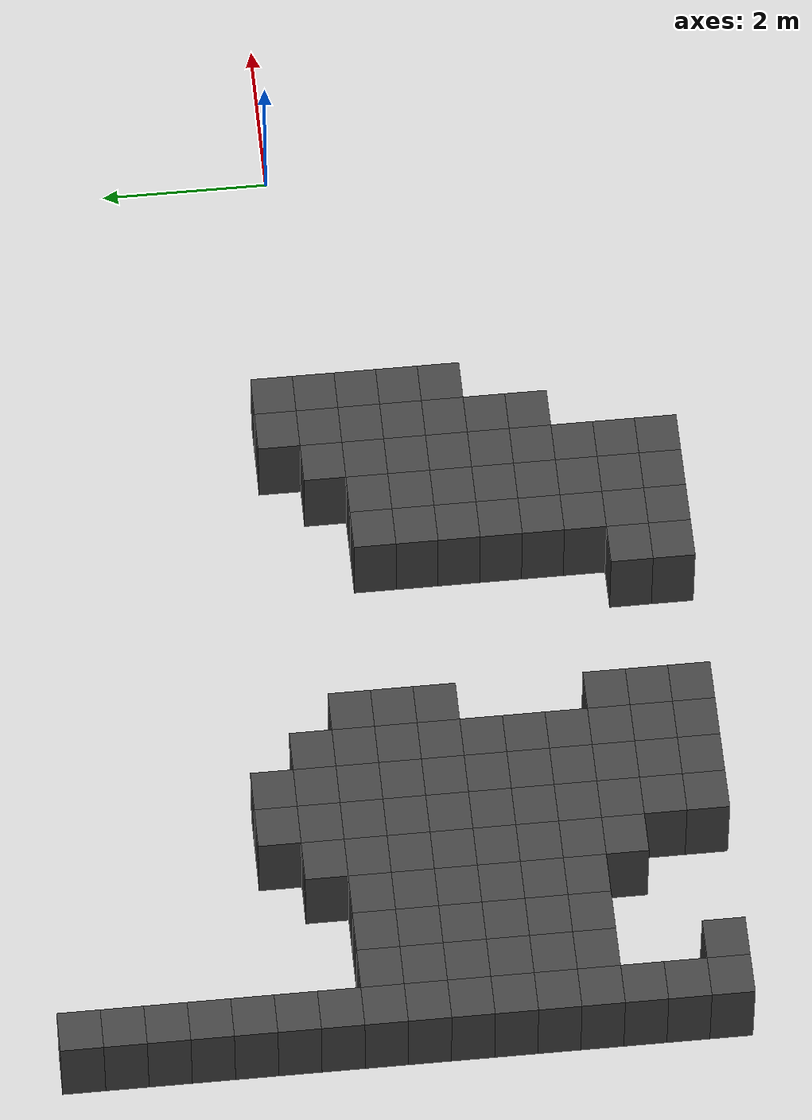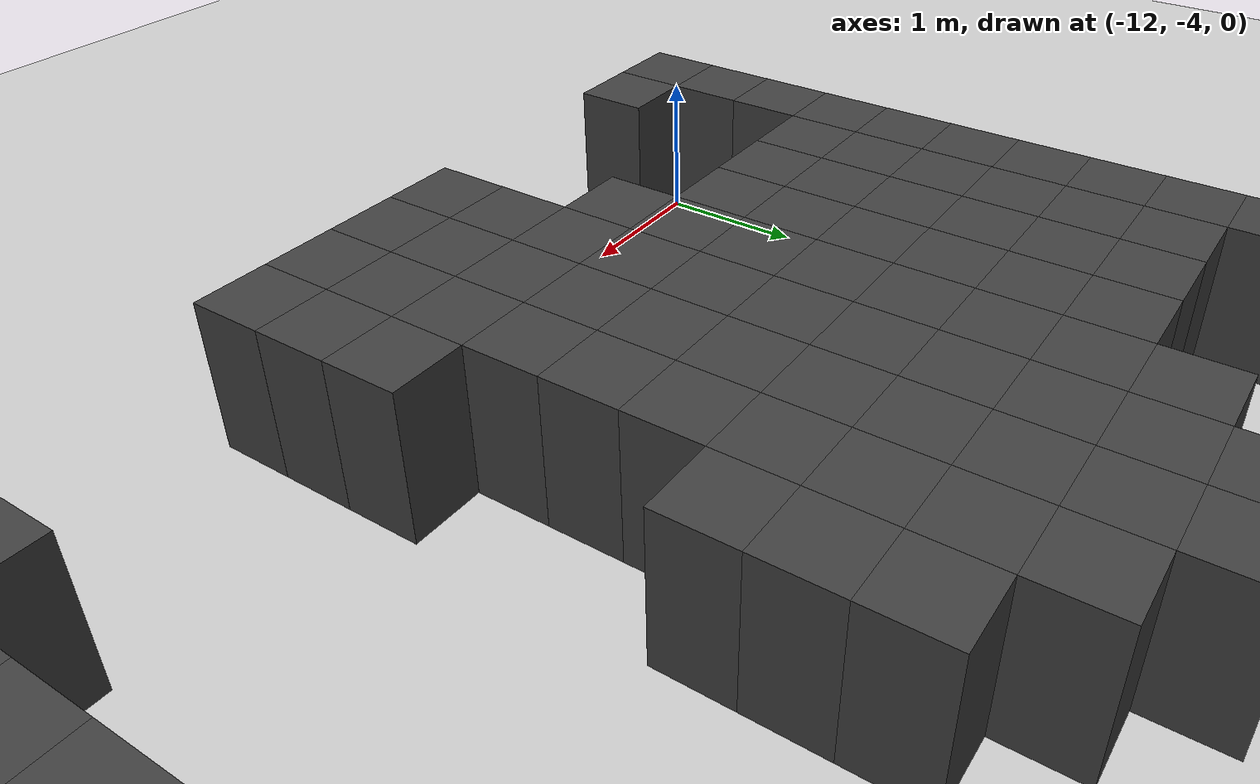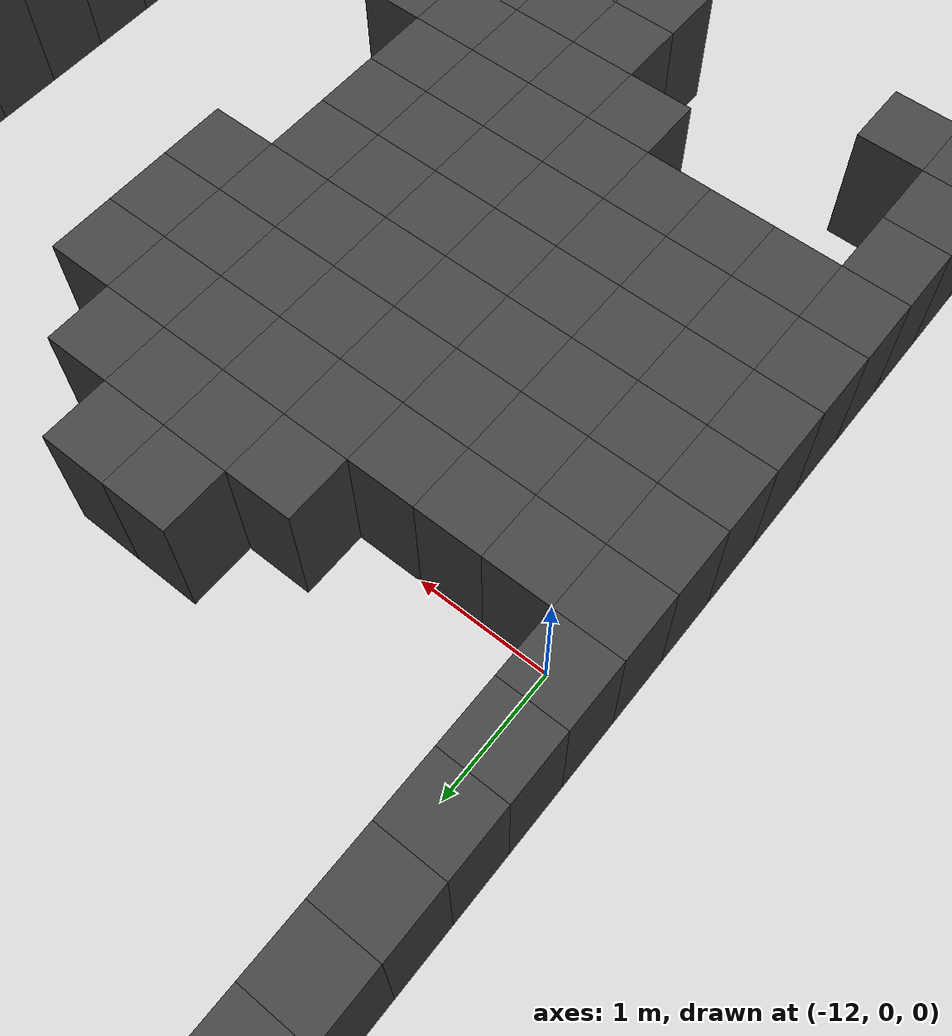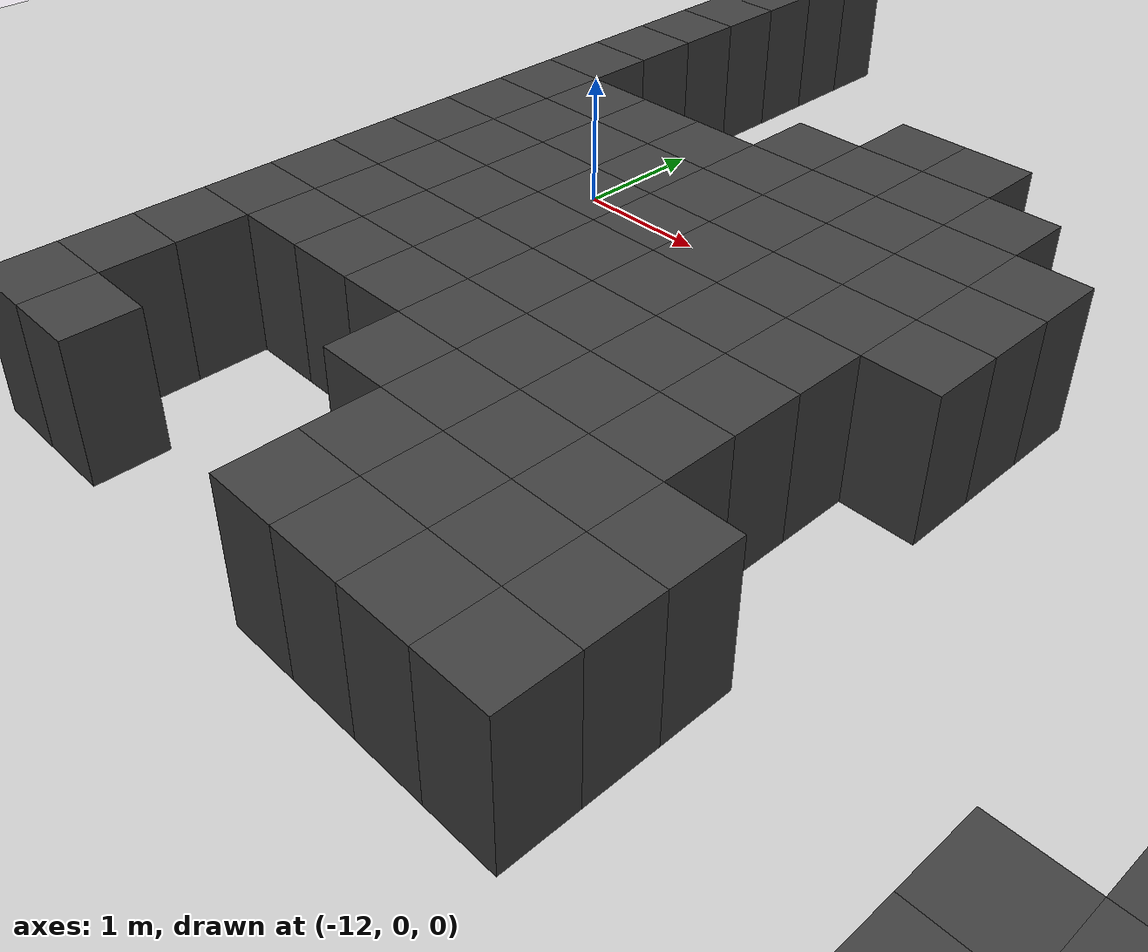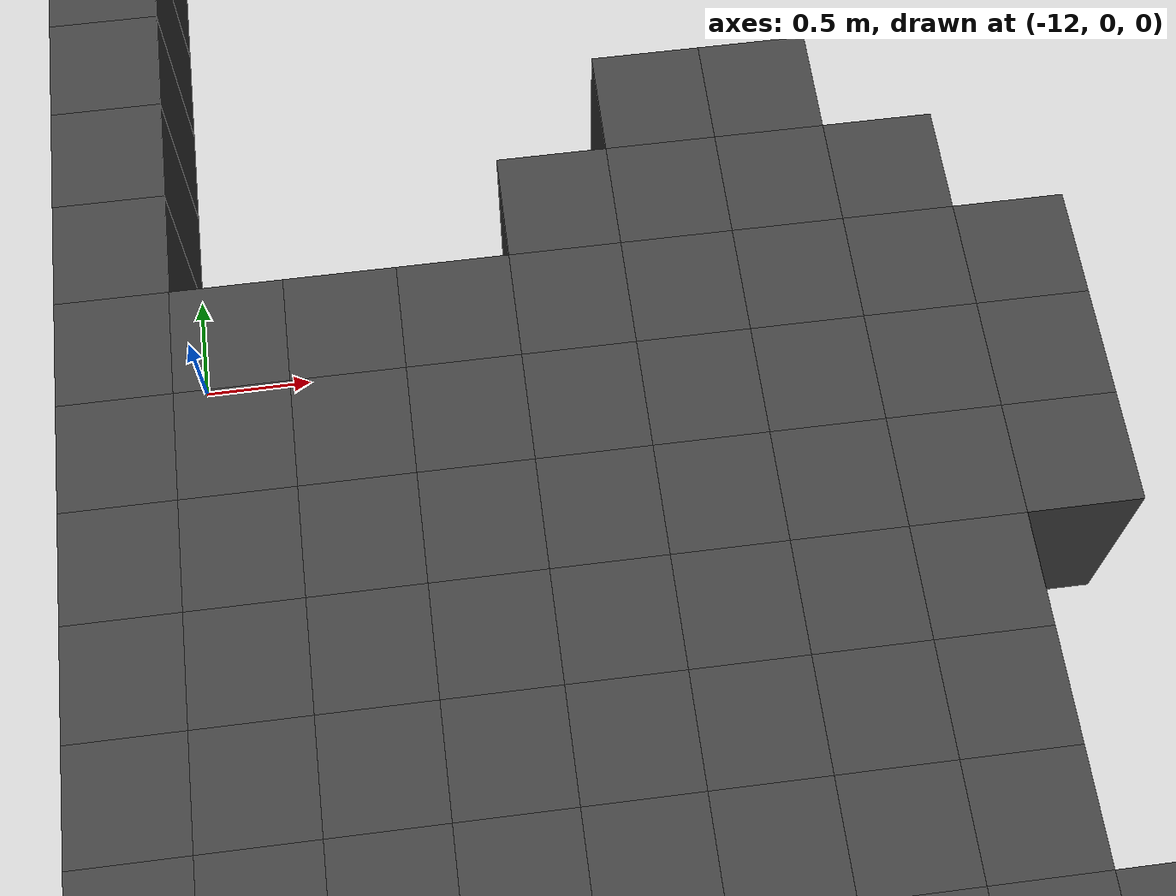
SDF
<sdf version="1.7">
 <world name="map_9381">
  <model name="ground_plane">
   <static>true</static>
   <link name="link">
    <collision name="collision">
     <geometry><plane><normal>0 0 1</normal><size>200 200</size></plane></geometry>
    </collision>
    <visual name="visual">
     <geometry><plane><normal>0 0 1</normal><size>200 200</size></plane></geometry>
     <material><ambient>0.8 0.8 0.8 1</ambient><diffuse>0.8 0.8 0.8 1</diffuse></material>
    </visual>
   </link>
  </model>
  <model name="maze_environment">
   <static>true</static>
   <link name="wall_299">
    <pose>-12.250 3.250 0.500 0 0 0</pose>
    <collision name="col"><geometry><box><size>0.5 0.5 1.0</size></box></geometry></collision>
    <visual name="vis">
     <geometry><box><size>0.5 0.5 1.0</size></box></geometry>
     <material><ambient>0.15 0.15 0.15 1</ambient><diffuse>0.25 0.25 0.25 1</diffuse></material>
    </visual>
   </link>
   <link name="wall_305">
    <pose>-12.250 2.750 0.500 0 0 0</pose>
    <collision name="col"><geometry><box><size>0.5 0.5 1.0</size></box></geometry></collision>
    <visual name="vis">
     <geometry><box><size>0.5 0.5 1.0</size></box></geometry>
     <material><ambient>0.15 0.15 0.15 1</ambient><diffuse>0.25 0.25 0.25 1</diffuse></material>
    </visual>
   </link>
   <link name="wall_311">
    <pose>-12.250 2.250 0.500 0 0 0</pose>
    <collision name="col"><geometry><box><size>0.5 0.5 1.0</size></box></geometry></collision>
    <visual name="vis">
     <geometry><box><size>0.5 0.5 1.0</size></box></geometry>
     <material><ambient>0.15 0.15 0.15 1</ambient><diffuse>0.25 0.25 0.25 1</diffuse></material>
    </visual>
   </link>
   <link name="wall_320">
    <pose>-12.250 1.750 0.500 0 0 0</pose>
    <collision name="col"><geometry><box><size>0.5 0.5 1.0</size></box></geometry></collision>
    <visual name="vis">
     <geometry><box><size>0.5 0.5 1.0</size></box></geometry>
     <material><ambient>0.15 0.15 0.15 1</ambient><diffuse>0.25 0.25 0.25 1</diffuse></material>
    </visual>
   </link>
   <link name="wall_329">
    <pose>-12.250 1.250 0.500 0 0 0</pose>
    <collision name="col"><geometry><box><size>0.5 0.5 1.0</size></box></geometry></collision>
    <visual name="vis">
     <geometry><box><size>0.5 0.5 1.0</size></box></geometry>
     <material><ambient>0.15 0.15 0.15 1</ambient><diffuse>0.25 0.25 0.25 1</diffuse></material>
    </visual>
   </link>
   <link name="wall_338">
    <pose>-12.250 0.750 0.500 0 0 0</pose>
    <collision name="col"><geometry><box><size>0.5 0.5 1.0</size></box></geometry></collision>
    <visual name="vis">
     <geometry><box><size>0.5 0.5 1.0</size></box></geometry>
     <material><ambient>0.15 0.15 0.15 1</ambient><diffuse>0.25 0.25 0.25 1</diffuse></material>
    </visual>
   </link>
   <link name="wall_339">
    <pose>-9.750 0.750 0.500 0 0 0</pose>
    <collision name="col"><geometry><box><size>0.5 0.5 1.0</size></box></geometry></collision>
    <visual name="vis">
     <geometry><box><size>0.5 0.5 1.0</size></box></geometry>
     <material><ambient>0.15 0.15 0.15 1</ambient><diffuse>0.25 0.25 0.25 1</diffuse></material>
    </visual>
   </link>
   <link name="wall_340">
    <pose>-9.250 0.750 0.500 0 0 0</pose>
    <collision name="col"><geometry><box><size>0.5 0.5 1.0</size></box></geometry></collision>
    <visual name="vis">
     <geometry><box><size>0.5 0.5 1.0</size></box></geometry>
     <material><ambient>0.15 0.15 0.15 1</ambient><diffuse>0.25 0.25 0.25 1</diffuse></material>
    </visual>
   </link>
   <link name="wall_347">
    <pose>-12.250 0.250 0.500 0 0 0</pose>
    <collision name="col"><geometry><box><size>0.5 0.5 1.0</size></box></geometry></collision>
    <visual name="vis">
     <geometry><box><size>0.5 0.5 1.0</size></box></geometry>
     <material><ambient>0.15 0.15 0.15 1</ambient><diffuse>0.25 0.25 0.25 1</diffuse></material>
    </visual>
   </link>
   <link name="wall_348">
    <pose>-10.250 0.250 0.500 0 0 0</pose>
    <collision name="col"><geometry><box><size>0.5 0.5 1.0</size></box></geometry></collision>
    <visual name="vis">
     <geometry><box><size>0.5 0.5 1.0</size></box></geometry>
     <material><ambient>0.15 0.15 0.15 1</ambient><diffuse>0.25 0.25 0.25 1</diffuse></material>
    </visual>
   </link>
   <link name="wall_349">
    <pose>-9.750 0.250 0.500 0 0 0</pose>
    <collision name="col"><geometry><box><size>0.5 0.5 1.0</size></box></geometry></collision>
    <visual name="vis">
     <geometry><box><size>0.5 0.5 1.0</size></box></geometry>
     <material><ambient>0.15 0.15 0.15 1</ambient><diffuse>0.25 0.25 0.25 1</diffuse></material>
    </visual>
   </link>
   <link name="wall_350">
    <pose>-9.250 0.250 0.500 0 0 0</pose>
    <collision name="col"><geometry><box><size>0.5 0.5 1.0</size></box></geometry></collision>
    <visual name="vis">
     <geometry><box><size>0.5 0.5 1.0</size></box></geometry>
     <material><ambient>0.15 0.15 0.15 1</ambient><diffuse>0.25 0.25 0.25 1</diffuse></material>
    </visual>
   </link>
   <link name="wall_351">
    <pose>-8.750 0.250 0.500 0 0 0</pose>
    <collision name="col"><geometry><box><size>0.5 0.5 1.0</size></box></geometry></collision>
    <visual name="vis">
     <geometry><box><size>0.5 0.5 1.0</size></box></geometry>
     <material><ambient>0.15 0.15 0.15 1</ambient><diffuse>0.25 0.25 0.25 1</diffuse></material>
    </visual>
   </link>
   <link name="wall_352">
    <pose>-4.250 0.250 0.500 0 0 0</pose>
    <collision name="col"><geometry><box><size>0.5 0.5 1.0</size></box></geometry></collision>
    <visual name="vis">
     <geometry><box><size>0.5 0.5 1.0</size></box></geometry>
     <material><ambient>0.15 0.15 0.15 1</ambient><diffuse>0.25 0.25 0.25 1</diffuse></material>
    </visual>
   </link>
   <link name="wall_353">
    <pose>-3.750 0.250 0.500 0 0 0</pose>
    <collision name="col"><geometry><box><size>0.5 0.5 1.0</size></box></geometry></collision>
    <visual name="vis">
     <geometry><box><size>0.5 0.5 1.0</size></box></geometry>
     <material><ambient>0.15 0.15 0.15 1</ambient><diffuse>0.25 0.25 0.25 1</diffuse></material>
    </visual>
   </link>
   <link name="wall_360">
    <pose>-12.250 -0.250 0.500 0 0 0</pose>
    <collision name="col"><geometry><box><size>0.5 0.5 1.0</size></box></geometry></collision>
    <visual name="vis">
     <geometry><box><size>0.5 0.5 1.0</size></box></geometry>
     <material><ambient>0.15 0.15 0.15 1</ambient><diffuse>0.25 0.25 0.25 1</diffuse></material>
    </visual>
   </link>
   <link name="wall_361">
    <pose>-11.750 -0.250 0.500 0 0 0</pose>
    <collision name="col"><geometry><box><size>0.5 0.5 1.0</size></box></geometry></collision>
    <visual name="vis">
     <geometry><box><size>0.5 0.5 1.0</size></box></geometry>
     <material><ambient>0.15 0.15 0.15 1</ambient><diffuse>0.25 0.25 0.25 1</diffuse></material>
    </visual>
   </link>
   <link name="wall_362">
    <pose>-11.250 -0.250 0.500 0 0 0</pose>
    <collision name="col"><geometry><box><size>0.5 0.5 1.0</size></box></geometry></collision>
    <visual name="vis">
     <geometry><box><size>0.5 0.5 1.0</size></box></geometry>
     <material><ambient>0.15 0.15 0.15 1</ambient><diffuse>0.25 0.25 0.25 1</diffuse></material>
    </visual>
   </link>
   <link name="wall_363">
    <pose>-10.750 -0.250 0.500 0 0 0</pose>
    <collision name="col"><geometry><box><size>0.5 0.5 1.0</size></box></geometry></collision>
    <visual name="vis">
     <geometry><box><size>0.5 0.5 1.0</size></box></geometry>
     <material><ambient>0.15 0.15 0.15 1</ambient><diffuse>0.25 0.25 0.25 1</diffuse></material>
    </visual>
   </link>
   <link name="wall_364">
    <pose>-10.250 -0.250 0.500 0 0 0</pose>
    <collision name="col"><geometry><box><size>0.5 0.5 1.0</size></box></geometry></collision>
    <visual name="vis">
     <geometry><box><size>0.5 0.5 1.0</size></box></geometry>
     <material><ambient>0.15 0.15 0.15 1</ambient><diffuse>0.25 0.25 0.25 1</diffuse></material>
    </visual>
   </link>
   <link name="wall_365">
    <pose>-9.750 -0.250 0.500 0 0 0</pose>
    <collision name="col"><geometry><box><size>0.5 0.5 1.0</size></box></geometry></collision>
    <visual name="vis">
     <geometry><box><size>0.5 0.5 1.0</size></box></geometry>
     <material><ambient>0.15 0.15 0.15 1</ambient><diffuse>0.25 0.25 0.25 1</diffuse></material>
    </visual>
   </link>
   <link name="wall_366">
    <pose>-9.250 -0.250 0.500 0 0 0</pose>
    <collision name="col"><geometry><box><size>0.5 0.5 1.0</size></box></geometry></collision>
    <visual name="vis">
     <geometry><box><size>0.5 0.5 1.0</size></box></geometry>
     <material><ambient>0.15 0.15 0.15 1</ambient><diffuse>0.25 0.25 0.25 1</diffuse></material>
    </visual>
   </link>
   <link name="wall_367">
    <pose>-8.750 -0.250 0.500 0 0 0</pose>
    <collision name="col"><geometry><box><size>0.5 0.5 1.0</size></box></geometry></collision>
    <visual name="vis">
     <geometry><box><size>0.5 0.5 1.0</size></box></geometry>
     <material><ambient>0.15 0.15 0.15 1</ambient><diffuse>0.25 0.25 0.25 1</diffuse></material>
    </visual>
   </link>
   <link name="wall_368">
    <pose>-8.250 -0.250 0.500 0 0 0</pose>
    <collision name="col"><geometry><box><size>0.5 0.5 1.0</size></box></geometry></collision>
    <visual name="vis">
     <geometry><box><size>0.5 0.5 1.0</size></box></geometry>
     <material><ambient>0.15 0.15 0.15 1</ambient><diffuse>0.25 0.25 0.25 1</diffuse></material>
    </visual>
   </link>
   <link name="wall_369">
    <pose>-4.750 -0.250 0.500 0 0 0</pose>
    <collision name="col"><geometry><box><size>0.5 0.5 1.0</size></box></geometry></collision>
    <visual name="vis">
     <geometry><box><size>0.5 0.5 1.0</size></box></geometry>
     <material><ambient>0.15 0.15 0.15 1</ambient><diffuse>0.25 0.25 0.25 1</diffuse></material>
    </visual>
   </link>
   <link name="wall_370">
    <pose>-4.250 -0.250 0.500 0 0 0</pose>
    <collision name="col"><geometry><box><size>0.5 0.5 1.0</size></box></geometry></collision>
    <visual name="vis">
     <geometry><box><size>0.5 0.5 1.0</size></box></geometry>
     <material><ambient>0.15 0.15 0.15 1</ambient><diffuse>0.25 0.25 0.25 1</diffuse></material>
    </visual>
   </link>
   <link name="wall_371">
    <pose>-3.750 -0.250 0.500 0 0 0</pose>
    <collision name="col"><geometry><box><size>0.5 0.5 1.0</size></box></geometry></collision>
    <visual name="vis">
     <geometry><box><size>0.5 0.5 1.0</size></box></geometry>
     <material><ambient>0.15 0.15 0.15 1</ambient><diffuse>0.25 0.25 0.25 1</diffuse></material>
    </visual>
   </link>
   <link name="wall_377">
    <pose>-12.250 -0.750 0.500 0 0 0</pose>
    <collision name="col"><geometry><box><size>0.5 0.5 1.0</size></box></geometry></collision>
    <visual name="vis">
     <geometry><box><size>0.5 0.5 1.0</size></box></geometry>
     <material><ambient>0.15 0.15 0.15 1</ambient><diffuse>0.25 0.25 0.25 1</diffuse></material>
    </visual>
   </link>
   <link name="wall_378">
    <pose>-11.750 -0.750 0.500 0 0 0</pose>
    <collision name="col"><geometry><box><size>0.5 0.5 1.0</size></box></geometry></collision>
    <visual name="vis">
     <geometry><box><size>0.5 0.5 1.0</size></box></geometry>
     <material><ambient>0.15 0.15 0.15 1</ambient><diffuse>0.25 0.25 0.25 1</diffuse></material>
    </visual>
   </link>
   <link name="wall_379">
    <pose>-11.250 -0.750 0.500 0 0 0</pose>
    <collision name="col"><geometry><box><size>0.5 0.5 1.0</size></box></geometry></collision>
    <visual name="vis">
     <geometry><box><size>0.5 0.5 1.0</size></box></geometry>
     <material><ambient>0.15 0.15 0.15 1</ambient><diffuse>0.25 0.25 0.25 1</diffuse></material>
    </visual>
   </link>
   <link name="wall_380">
    <pose>-10.750 -0.750 0.500 0 0 0</pose>
    <collision name="col"><geometry><box><size>0.5 0.5 1.0</size></box></geometry></collision>
    <visual name="vis">
     <geometry><box><size>0.5 0.5 1.0</size></box></geometry>
     <material><ambient>0.15 0.15 0.15 1</ambient><diffuse>0.25 0.25 0.25 1</diffuse></material>
    </visual>
   </link>
   <link name="wall_381">
    <pose>-10.250 -0.750 0.500 0 0 0</pose>
    <collision name="col"><geometry><box><size>0.5 0.5 1.0</size></box></geometry></collision>
    <visual name="vis">
     <geometry><box><size>0.5 0.5 1.0</size></box></geometry>
     <material><ambient>0.15 0.15 0.15 1</ambient><diffuse>0.25 0.25 0.25 1</diffuse></material>
    </visual>
   </link>
   <link name="wall_382">
    <pose>-9.750 -0.750 0.500 0 0 0</pose>
    <collision name="col"><geometry><box><size>0.5 0.5 1.0</size></box></geometry></collision>
    <visual name="vis">
     <geometry><box><size>0.5 0.5 1.0</size></box></geometry>
     <material><ambient>0.15 0.15 0.15 1</ambient><diffuse>0.25 0.25 0.25 1</diffuse></material>
    </visual>
   </link>
   <link name="wall_383">
    <pose>-9.250 -0.750 0.500 0 0 0</pose>
    <collision name="col"><geometry><box><size>0.5 0.5 1.0</size></box></geometry></collision>
    <visual name="vis">
     <geometry><box><size>0.5 0.5 1.0</size></box></geometry>
     <material><ambient>0.15 0.15 0.15 1</ambient><diffuse>0.25 0.25 0.25 1</diffuse></material>
    </visual>
   </link>
   <link name="wall_384">
    <pose>-8.750 -0.750 0.500 0 0 0</pose>
    <collision name="col"><geometry><box><size>0.5 0.5 1.0</size></box></geometry></collision>
    <visual name="vis">
     <geometry><box><size>0.5 0.5 1.0</size></box></geometry>
     <material><ambient>0.15 0.15 0.15 1</ambient><diffuse>0.25 0.25 0.25 1</diffuse></material>
    </visual>
   </link>
   <link name="wall_385">
    <pose>-8.250 -0.750 0.500 0 0 0</pose>
    <collision name="col"><geometry><box><size>0.5 0.5 1.0</size></box></geometry></collision>
    <visual name="vis">
     <geometry><box><size>0.5 0.5 1.0</size></box></geometry>
     <material><ambient>0.15 0.15 0.15 1</ambient><diffuse>0.25 0.25 0.25 1</diffuse></material>
    </visual>
   </link>
   <link name="wall_386">
    <pose>-5.750 -0.750 0.500 0 0 0</pose>
    <collision name="col"><geometry><box><size>0.5 0.5 1.0</size></box></geometry></collision>
    <visual name="vis">
     <geometry><box><size>0.5 0.5 1.0</size></box></geometry>
     <material><ambient>0.15 0.15 0.15 1</ambient><diffuse>0.25 0.25 0.25 1</diffuse></material>
    </visual>
   </link>
   <link name="wall_387">
    <pose>-5.250 -0.750 0.500 0 0 0</pose>
    <collision name="col"><geometry><box><size>0.5 0.5 1.0</size></box></geometry></collision>
    <visual name="vis">
     <geometry><box><size>0.5 0.5 1.0</size></box></geometry>
     <material><ambient>0.15 0.15 0.15 1</ambient><diffuse>0.25 0.25 0.25 1</diffuse></material>
    </visual>
   </link>
   <link name="wall_388">
    <pose>-4.750 -0.750 0.500 0 0 0</pose>
    <collision name="col"><geometry><box><size>0.5 0.5 1.0</size></box></geometry></collision>
    <visual name="vis">
     <geometry><box><size>0.5 0.5 1.0</size></box></geometry>
     <material><ambient>0.15 0.15 0.15 1</ambient><diffuse>0.25 0.25 0.25 1</diffuse></material>
    </visual>
   </link>
   <link name="wall_389">
    <pose>-4.250 -0.750 0.500 0 0 0</pose>
    <collision name="col"><geometry><box><size>0.5 0.5 1.0</size></box></geometry></collision>
    <visual name="vis">
     <geometry><box><size>0.5 0.5 1.0</size></box></geometry>
     <material><ambient>0.15 0.15 0.15 1</ambient><diffuse>0.25 0.25 0.25 1</diffuse></material>
    </visual>
   </link>
   <link name="wall_390">
    <pose>-3.750 -0.750 0.500 0 0 0</pose>
    <collision name="col"><geometry><box><size>0.5 0.5 1.0</size></box></geometry></collision>
    <visual name="vis">
     <geometry><box><size>0.5 0.5 1.0</size></box></geometry>
     <material><ambient>0.15 0.15 0.15 1</ambient><diffuse>0.25 0.25 0.25 1</diffuse></material>
    </visual>
   </link>
   <link name="wall_397">
    <pose>-12.250 -1.250 0.500 0 0 0</pose>
    <collision name="col"><geometry><box><size>0.5 0.5 1.0</size></box></geometry></collision>
    <visual name="vis">
     <geometry><box><size>0.5 0.5 1.0</size></box></geometry>
     <material><ambient>0.15 0.15 0.15 1</ambient><diffuse>0.25 0.25 0.25 1</diffuse></material>
    </visual>
   </link>
   <link name="wall_398">
    <pose>-11.750 -1.250 0.500 0 0 0</pose>
    <collision name="col"><geometry><box><size>0.5 0.5 1.0</size></box></geometry></collision>
    <visual name="vis">
     <geometry><box><size>0.5 0.5 1.0</size></box></geometry>
     <material><ambient>0.15 0.15 0.15 1</ambient><diffuse>0.25 0.25 0.25 1</diffuse></material>
    </visual>
   </link>
   <link name="wall_399">
    <pose>-11.250 -1.250 0.500 0 0 0</pose>
    <collision name="col"><geometry><box><size>0.5 0.5 1.0</size></box></geometry></collision>
    <visual name="vis">
     <geometry><box><size>0.5 0.5 1.0</size></box></geometry>
     <material><ambient>0.15 0.15 0.15 1</ambient><diffuse>0.25 0.25 0.25 1</diffuse></material>
    </visual>
   </link>
   <link name="wall_400">
    <pose>-10.750 -1.250 0.500 0 0 0</pose>
    <collision name="col"><geometry><box><size>0.5 0.5 1.0</size></box></geometry></collision>
    <visual name="vis">
     <geometry><box><size>0.5 0.5 1.0</size></box></geometry>
     <material><ambient>0.15 0.15 0.15 1</ambient><diffuse>0.25 0.25 0.25 1</diffuse></material>
    </visual>
   </link>
   <link name="wall_401">
    <pose>-10.250 -1.250 0.500 0 0 0</pose>
    <collision name="col"><geometry><box><size>0.5 0.5 1.0</size></box></geometry></collision>
    <visual name="vis">
     <geometry><box><size>0.5 0.5 1.0</size></box></geometry>
     <material><ambient>0.15 0.15 0.15 1</ambient><diffuse>0.25 0.25 0.25 1</diffuse></material>
    </visual>
   </link>
   <link name="wall_402">
    <pose>-9.750 -1.250 0.500 0 0 0</pose>
    <collision name="col"><geometry><box><size>0.5 0.5 1.0</size></box></geometry></collision>
    <visual name="vis">
     <geometry><box><size>0.5 0.5 1.0</size></box></geometry>
     <material><ambient>0.15 0.15 0.15 1</ambient><diffuse>0.25 0.25 0.25 1</diffuse></material>
    </visual>
   </link>
   <link name="wall_403">
    <pose>-9.250 -1.250 0.500 0 0 0</pose>
    <collision name="col"><geometry><box><size>0.5 0.5 1.0</size></box></geometry></collision>
    <visual name="vis">
     <geometry><box><size>0.5 0.5 1.0</size></box></geometry>
     <material><ambient>0.15 0.15 0.15 1</ambient><diffuse>0.25 0.25 0.25 1</diffuse></material>
    </visual>
   </link>
   <link name="wall_404">
    <pose>-8.750 -1.250 0.500 0 0 0</pose>
    <collision name="col"><geometry><box><size>0.5 0.5 1.0</size></box></geometry></collision>
    <visual name="vis">
     <geometry><box><size>0.5 0.5 1.0</size></box></geometry>
     <material><ambient>0.15 0.15 0.15 1</ambient><diffuse>0.25 0.25 0.25 1</diffuse></material>
    </visual>
   </link>
   <link name="wall_405">
    <pose>-8.250 -1.250 0.500 0 0 0</pose>
    <collision name="col"><geometry><box><size>0.5 0.5 1.0</size></box></geometry></collision>
    <visual name="vis">
     <geometry><box><size>0.5 0.5 1.0</size></box></geometry>
     <material><ambient>0.15 0.15 0.15 1</ambient><diffuse>0.25 0.25 0.25 1</diffuse></material>
    </visual>
   </link>
   <link name="wall_406">
    <pose>-5.750 -1.250 0.500 0 0 0</pose>
    <collision name="col"><geometry><box><size>0.5 0.5 1.0</size></box></geometry></collision>
    <visual name="vis">
     <geometry><box><size>0.5 0.5 1.0</size></box></geometry>
     <material><ambient>0.15 0.15 0.15 1</ambient><diffuse>0.25 0.25 0.25 1</diffuse></material>
    </visual>
   </link>
   <link name="wall_407">
    <pose>-5.250 -1.250 0.500 0 0 0</pose>
    <collision name="col"><geometry><box><size>0.5 0.5 1.0</size></box></geometry></collision>
    <visual name="vis">
     <geometry><box><size>0.5 0.5 1.0</size></box></geometry>
     <material><ambient>0.15 0.15 0.15 1</ambient><diffuse>0.25 0.25 0.25 1</diffuse></material>
    </visual>
   </link>
   <link name="wall_408">
    <pose>-4.750 -1.250 0.500 0 0 0</pose>
    <collision name="col"><geometry><box><size>0.5 0.5 1.0</size></box></geometry></collision>
    <visual name="vis">
     <geometry><box><size>0.5 0.5 1.0</size></box></geometry>
     <material><ambient>0.15 0.15 0.15 1</ambient><diffuse>0.25 0.25 0.25 1</diffuse></material>
    </visual>
   </link>
   <link name="wall_409">
    <pose>-4.250 -1.250 0.500 0 0 0</pose>
    <collision name="col"><geometry><box><size>0.5 0.5 1.0</size></box></geometry></collision>
    <visual name="vis">
     <geometry><box><size>0.5 0.5 1.0</size></box></geometry>
     <material><ambient>0.15 0.15 0.15 1</ambient><diffuse>0.25 0.25 0.25 1</diffuse></material>
    </visual>
   </link>
   <link name="wall_410">
    <pose>-3.750 -1.250 0.500 0 0 0</pose>
    <collision name="col"><geometry><box><size>0.5 0.5 1.0</size></box></geometry></collision>
    <visual name="vis">
     <geometry><box><size>0.5 0.5 1.0</size></box></geometry>
     <material><ambient>0.15 0.15 0.15 1</ambient><diffuse>0.25 0.25 0.25 1</diffuse></material>
    </visual>
   </link>
   <link name="wall_420">
    <pose>-12.250 -1.750 0.500 0 0 0</pose>
    <collision name="col"><geometry><box><size>0.5 0.5 1.0</size></box></geometry></collision>
    <visual name="vis">
     <geometry><box><size>0.5 0.5 1.0</size></box></geometry>
     <material><ambient>0.15 0.15 0.15 1</ambient><diffuse>0.25 0.25 0.25 1</diffuse></material>
    </visual>
   </link>
   <link name="wall_421">
    <pose>-11.750 -1.750 0.500 0 0 0</pose>
    <collision name="col"><geometry><box><size>0.5 0.5 1.0</size></box></geometry></collision>
    <visual name="vis">
     <geometry><box><size>0.5 0.5 1.0</size></box></geometry>
     <material><ambient>0.15 0.15 0.15 1</ambient><diffuse>0.25 0.25 0.25 1</diffuse></material>
    </visual>
   </link>
   <link name="wall_422">
    <pose>-11.250 -1.750 0.500 0 0 0</pose>
    <collision name="col"><geometry><box><size>0.5 0.5 1.0</size></box></geometry></collision>
    <visual name="vis">
     <geometry><box><size>0.5 0.5 1.0</size></box></geometry>
     <material><ambient>0.15 0.15 0.15 1</ambient><diffuse>0.25 0.25 0.25 1</diffuse></material>
    </visual>
   </link>
   <link name="wall_423">
    <pose>-10.750 -1.750 0.500 0 0 0</pose>
    <collision name="col"><geometry><box><size>0.5 0.5 1.0</size></box></geometry></collision>
    <visual name="vis">
     <geometry><box><size>0.5 0.5 1.0</size></box></geometry>
     <material><ambient>0.15 0.15 0.15 1</ambient><diffuse>0.25 0.25 0.25 1</diffuse></material>
    </visual>
   </link>
   <link name="wall_424">
    <pose>-10.250 -1.750 0.500 0 0 0</pose>
    <collision name="col"><geometry><box><size>0.5 0.5 1.0</size></box></geometry></collision>
    <visual name="vis">
     <geometry><box><size>0.5 0.5 1.0</size></box></geometry>
     <material><ambient>0.15 0.15 0.15 1</ambient><diffuse>0.25 0.25 0.25 1</diffuse></material>
    </visual>
   </link>
   <link name="wall_425">
    <pose>-9.750 -1.750 0.500 0 0 0</pose>
    <collision name="col"><geometry><box><size>0.5 0.5 1.0</size></box></geometry></collision>
    <visual name="vis">
     <geometry><box><size>0.5 0.5 1.0</size></box></geometry>
     <material><ambient>0.15 0.15 0.15 1</ambient><diffuse>0.25 0.25 0.25 1</diffuse></material>
    </visual>
   </link>
   <link name="wall_426">
    <pose>-9.250 -1.750 0.500 0 0 0</pose>
    <collision name="col"><geometry><box><size>0.5 0.5 1.0</size></box></geometry></collision>
    <visual name="vis">
     <geometry><box><size>0.5 0.5 1.0</size></box></geometry>
     <material><ambient>0.15 0.15 0.15 1</ambient><diffuse>0.25 0.25 0.25 1</diffuse></material>
    </visual>
   </link>
   <link name="wall_427">
    <pose>-8.750 -1.750 0.500 0 0 0</pose>
    <collision name="col"><geometry><box><size>0.5 0.5 1.0</size></box></geometry></collision>
    <visual name="vis">
     <geometry><box><size>0.5 0.5 1.0</size></box></geometry>
     <material><ambient>0.15 0.15 0.15 1</ambient><diffuse>0.25 0.25 0.25 1</diffuse></material>
    </visual>
   </link>
   <link name="wall_428">
    <pose>-5.750 -1.750 0.500 0 0 0</pose>
    <collision name="col"><geometry><box><size>0.5 0.5 1.0</size></box></geometry></collision>
    <visual name="vis">
     <geometry><box><size>0.5 0.5 1.0</size></box></geometry>
     <material><ambient>0.15 0.15 0.15 1</ambient><diffuse>0.25 0.25 0.25 1</diffuse></material>
    </visual>
   </link>
   <link name="wall_429">
    <pose>-5.250 -1.750 0.500 0 0 0</pose>
    <collision name="col"><geometry><box><size>0.5 0.5 1.0</size></box></geometry></collision>
    <visual name="vis">
     <geometry><box><size>0.5 0.5 1.0</size></box></geometry>
     <material><ambient>0.15 0.15 0.15 1</ambient><diffuse>0.25 0.25 0.25 1</diffuse></material>
    </visual>
   </link>
   <link name="wall_430">
    <pose>-4.750 -1.750 0.500 0 0 0</pose>
    <collision name="col"><geometry><box><size>0.5 0.5 1.0</size></box></geometry></collision>
    <visual name="vis">
     <geometry><box><size>0.5 0.5 1.0</size></box></geometry>
     <material><ambient>0.15 0.15 0.15 1</ambient><diffuse>0.25 0.25 0.25 1</diffuse></material>
    </visual>
   </link>
   <link name="wall_431">
    <pose>-4.250 -1.750 0.500 0 0 0</pose>
    <collision name="col"><geometry><box><size>0.5 0.5 1.0</size></box></geometry></collision>
    <visual name="vis">
     <geometry><box><size>0.5 0.5 1.0</size></box></geometry>
     <material><ambient>0.15 0.15 0.15 1</ambient><diffuse>0.25 0.25 0.25 1</diffuse></material>
    </visual>
   </link>
   <link name="wall_432">
    <pose>-3.750 -1.750 0.500 0 0 0</pose>
    <collision name="col"><geometry><box><size>0.5 0.5 1.0</size></box></geometry></collision>
    <visual name="vis">
     <geometry><box><size>0.5 0.5 1.0</size></box></geometry>
     <material><ambient>0.15 0.15 0.15 1</ambient><diffuse>0.25 0.25 0.25 1</diffuse></material>
    </visual>
   </link>
   <link name="wall_440">
    <pose>-12.250 -2.250 0.500 0 0 0</pose>
    <collision name="col"><geometry><box><size>0.5 0.5 1.0</size></box></geometry></collision>
    <visual name="vis">
     <geometry><box><size>0.5 0.5 1.0</size></box></geometry>
     <material><ambient>0.15 0.15 0.15 1</ambient><diffuse>0.25 0.25 0.25 1</diffuse></material>
    </visual>
   </link>
   <link name="wall_441">
    <pose>-11.750 -2.250 0.500 0 0 0</pose>
    <collision name="col"><geometry><box><size>0.5 0.5 1.0</size></box></geometry></collision>
    <visual name="vis">
     <geometry><box><size>0.5 0.5 1.0</size></box></geometry>
     <material><ambient>0.15 0.15 0.15 1</ambient><diffuse>0.25 0.25 0.25 1</diffuse></material>
    </visual>
   </link>
   <link name="wall_442">
    <pose>-11.250 -2.250 0.500 0 0 0</pose>
    <collision name="col"><geometry><box><size>0.5 0.5 1.0</size></box></geometry></collision>
    <visual name="vis">
     <geometry><box><size>0.5 0.5 1.0</size></box></geometry>
     <material><ambient>0.15 0.15 0.15 1</ambient><diffuse>0.25 0.25 0.25 1</diffuse></material>
    </visual>
   </link>
   <link name="wall_443">
    <pose>-10.750 -2.250 0.500 0 0 0</pose>
    <collision name="col"><geometry><box><size>0.5 0.5 1.0</size></box></geometry></collision>
    <visual name="vis">
     <geometry><box><size>0.5 0.5 1.0</size></box></geometry>
     <material><ambient>0.15 0.15 0.15 1</ambient><diffuse>0.25 0.25 0.25 1</diffuse></material>
    </visual>
   </link>
   <link name="wall_444">
    <pose>-10.250 -2.250 0.500 0 0 0</pose>
    <collision name="col"><geometry><box><size>0.5 0.5 1.0</size></box></geometry></collision>
    <visual name="vis">
     <geometry><box><size>0.5 0.5 1.0</size></box></geometry>
     <material><ambient>0.15 0.15 0.15 1</ambient><diffuse>0.25 0.25 0.25 1</diffuse></material>
    </visual>
   </link>
   <link name="wall_445">
    <pose>-9.750 -2.250 0.500 0 0 0</pose>
    <collision name="col"><geometry><box><size>0.5 0.5 1.0</size></box></geometry></collision>
    <visual name="vis">
     <geometry><box><size>0.5 0.5 1.0</size></box></geometry>
     <material><ambient>0.15 0.15 0.15 1</ambient><diffuse>0.25 0.25 0.25 1</diffuse></material>
    </visual>
   </link>
   <link name="wall_446">
    <pose>-9.250 -2.250 0.500 0 0 0</pose>
    <collision name="col"><geometry><box><size>0.5 0.5 1.0</size></box></geometry></collision>
    <visual name="vis">
     <geometry><box><size>0.5 0.5 1.0</size></box></geometry>
     <material><ambient>0.15 0.15 0.15 1</ambient><diffuse>0.25 0.25 0.25 1</diffuse></material>
    </visual>
   </link>
   <link name="wall_447">
    <pose>-8.750 -2.250 0.500 0 0 0</pose>
    <collision name="col"><geometry><box><size>0.5 0.5 1.0</size></box></geometry></collision>
    <visual name="vis">
     <geometry><box><size>0.5 0.5 1.0</size></box></geometry>
     <material><ambient>0.15 0.15 0.15 1</ambient><diffuse>0.25 0.25 0.25 1</diffuse></material>
    </visual>
   </link>
   <link name="wall_448">
    <pose>-5.750 -2.250 0.500 0 0 0</pose>
    <collision name="col"><geometry><box><size>0.5 0.5 1.0</size></box></geometry></collision>
    <visual name="vis">
     <geometry><box><size>0.5 0.5 1.0</size></box></geometry>
     <material><ambient>0.15 0.15 0.15 1</ambient><diffuse>0.25 0.25 0.25 1</diffuse></material>
    </visual>
   </link>
   <link name="wall_449">
    <pose>-5.250 -2.250 0.500 0 0 0</pose>
    <collision name="col"><geometry><box><size>0.5 0.5 1.0</size></box></geometry></collision>
    <visual name="vis">
     <geometry><box><size>0.5 0.5 1.0</size></box></geometry>
     <material><ambient>0.15 0.15 0.15 1</ambient><diffuse>0.25 0.25 0.25 1</diffuse></material>
    </visual>
   </link>
   <link name="wall_450">
    <pose>-4.750 -2.250 0.500 0 0 0</pose>
    <collision name="col"><geometry><box><size>0.5 0.5 1.0</size></box></geometry></collision>
    <visual name="vis">
     <geometry><box><size>0.5 0.5 1.0</size></box></geometry>
     <material><ambient>0.15 0.15 0.15 1</ambient><diffuse>0.25 0.25 0.25 1</diffuse></material>
    </visual>
   </link>
   <link name="wall_451">
    <pose>-4.250 -2.250 0.500 0 0 0</pose>
    <collision name="col"><geometry><box><size>0.5 0.5 1.0</size></box></geometry></collision>
    <visual name="vis">
     <geometry><box><size>0.5 0.5 1.0</size></box></geometry>
     <material><ambient>0.15 0.15 0.15 1</ambient><diffuse>0.25 0.25 0.25 1</diffuse></material>
    </visual>
   </link>
   <link name="wall_456">
    <pose>-12.250 -2.750 0.500 0 0 0</pose>
    <collision name="col"><geometry><box><size>0.5 0.5 1.0</size></box></geometry></collision>
    <visual name="vis">
     <geometry><box><size>0.5 0.5 1.0</size></box></geometry>
     <material><ambient>0.15 0.15 0.15 1</ambient><diffuse>0.25 0.25 0.25 1</diffuse></material>
    </visual>
   </link>
   <link name="wall_457">
    <pose>-11.750 -2.750 0.500 0 0 0</pose>
    <collision name="col"><geometry><box><size>0.5 0.5 1.0</size></box></geometry></collision>
    <visual name="vis">
     <geometry><box><size>0.5 0.5 1.0</size></box></geometry>
     <material><ambient>0.15 0.15 0.15 1</ambient><diffuse>0.25 0.25 0.25 1</diffuse></material>
    </visual>
   </link>
   <link name="wall_458">
    <pose>-11.250 -2.750 0.500 0 0 0</pose>
    <collision name="col"><geometry><box><size>0.5 0.5 1.0</size></box></geometry></collision>
    <visual name="vis">
     <geometry><box><size>0.5 0.5 1.0</size></box></geometry>
     <material><ambient>0.15 0.15 0.15 1</ambient><diffuse>0.25 0.25 0.25 1</diffuse></material>
    </visual>
   </link>
   <link name="wall_459">
    <pose>-10.750 -2.750 0.500 0 0 0</pose>
    <collision name="col"><geometry><box><size>0.5 0.5 1.0</size></box></geometry></collision>
    <visual name="vis">
     <geometry><box><size>0.5 0.5 1.0</size></box></geometry>
     <material><ambient>0.15 0.15 0.15 1</ambient><diffuse>0.25 0.25 0.25 1</diffuse></material>
    </visual>
   </link>
   <link name="wall_460">
    <pose>-10.250 -2.750 0.500 0 0 0</pose>
    <collision name="col"><geometry><box><size>0.5 0.5 1.0</size></box></geometry></collision>
    <visual name="vis">
     <geometry><box><size>0.5 0.5 1.0</size></box></geometry>
     <material><ambient>0.15 0.15 0.15 1</ambient><diffuse>0.25 0.25 0.25 1</diffuse></material>
    </visual>
   </link>
   <link name="wall_461">
    <pose>-9.750 -2.750 0.500 0 0 0</pose>
    <collision name="col"><geometry><box><size>0.5 0.5 1.0</size></box></geometry></collision>
    <visual name="vis">
     <geometry><box><size>0.5 0.5 1.0</size></box></geometry>
     <material><ambient>0.15 0.15 0.15 1</ambient><diffuse>0.25 0.25 0.25 1</diffuse></material>
    </visual>
   </link>
   <link name="wall_462">
    <pose>-9.250 -2.750 0.500 0 0 0</pose>
    <collision name="col"><geometry><box><size>0.5 0.5 1.0</size></box></geometry></collision>
    <visual name="vis">
     <geometry><box><size>0.5 0.5 1.0</size></box></geometry>
     <material><ambient>0.15 0.15 0.15 1</ambient><diffuse>0.25 0.25 0.25 1</diffuse></material>
    </visual>
   </link>
   <link name="wall_463">
    <pose>-8.750 -2.750 0.500 0 0 0</pose>
    <collision name="col"><geometry><box><size>0.5 0.5 1.0</size></box></geometry></collision>
    <visual name="vis">
     <geometry><box><size>0.5 0.5 1.0</size></box></geometry>
     <material><ambient>0.15 0.15 0.15 1</ambient><diffuse>0.25 0.25 0.25 1</diffuse></material>
    </visual>
   </link>
   <link name="wall_464">
    <pose>-5.750 -2.750 0.500 0 0 0</pose>
    <collision name="col"><geometry><box><size>0.5 0.5 1.0</size></box></geometry></collision>
    <visual name="vis">
     <geometry><box><size>0.5 0.5 1.0</size></box></geometry>
     <material><ambient>0.15 0.15 0.15 1</ambient><diffuse>0.25 0.25 0.25 1</diffuse></material>
    </visual>
   </link>
   <link name="wall_465">
    <pose>-5.250 -2.750 0.500 0 0 0</pose>
    <collision name="col"><geometry><box><size>0.5 0.5 1.0</size></box></geometry></collision>
    <visual name="vis">
     <geometry><box><size>0.5 0.5 1.0</size></box></geometry>
     <material><ambient>0.15 0.15 0.15 1</ambient><diffuse>0.25 0.25 0.25 1</diffuse></material>
    </visual>
   </link>
   <link name="wall_466">
    <pose>-4.750 -2.750 0.500 0 0 0</pose>
    <collision name="col"><geometry><box><size>0.5 0.5 1.0</size></box></geometry></collision>
    <visual name="vis">
     <geometry><box><size>0.5 0.5 1.0</size></box></geometry>
     <material><ambient>0.15 0.15 0.15 1</ambient><diffuse>0.25 0.25 0.25 1</diffuse></material>
    </visual>
   </link>
   <link name="wall_467">
    <pose>-4.250 -2.750 0.500 0 0 0</pose>
    <collision name="col"><geometry><box><size>0.5 0.5 1.0</size></box></geometry></collision>
    <visual name="vis">
     <geometry><box><size>0.5 0.5 1.0</size></box></geometry>
     <material><ambient>0.15 0.15 0.15 1</ambient><diffuse>0.25 0.25 0.25 1</diffuse></material>
    </visual>
   </link>
   <link name="wall_472">
    <pose>-12.250 -3.250 0.500 0 0 0</pose>
    <collision name="col"><geometry><box><size>0.5 0.5 1.0</size></box></geometry></collision>
    <visual name="vis">
     <geometry><box><size>0.5 0.5 1.0</size></box></geometry>
     <material><ambient>0.15 0.15 0.15 1</ambient><diffuse>0.25 0.25 0.25 1</diffuse></material>
    </visual>
   </link>
   <link name="wall_473">
    <pose>-10.250 -3.250 0.500 0 0 0</pose>
    <collision name="col"><geometry><box><size>0.5 0.5 1.0</size></box></geometry></collision>
    <visual name="vis">
     <geometry><box><size>0.5 0.5 1.0</size></box></geometry>
     <material><ambient>0.15 0.15 0.15 1</ambient><diffuse>0.25 0.25 0.25 1</diffuse></material>
    </visual>
   </link>
   <link name="wall_474">
    <pose>-9.750 -3.250 0.500 0 0 0</pose>
    <collision name="col"><geometry><box><size>0.5 0.5 1.0</size></box></geometry></collision>
    <visual name="vis">
     <geometry><box><size>0.5 0.5 1.0</size></box></geometry>
     <material><ambient>0.15 0.15 0.15 1</ambient><diffuse>0.25 0.25 0.25 1</diffuse></material>
    </visual>
   </link>
   <link name="wall_475">
    <pose>-9.250 -3.250 0.500 0 0 0</pose>
    <collision name="col"><geometry><box><size>0.5 0.5 1.0</size></box></geometry></collision>
    <visual name="vis">
     <geometry><box><size>0.5 0.5 1.0</size></box></geometry>
     <material><ambient>0.15 0.15 0.15 1</ambient><diffuse>0.25 0.25 0.25 1</diffuse></material>
    </visual>
   </link>
   <link name="wall_476">
    <pose>-8.750 -3.250 0.500 0 0 0</pose>
    <collision name="col"><geometry><box><size>0.5 0.5 1.0</size></box></geometry></collision>
    <visual name="vis">
     <geometry><box><size>0.5 0.5 1.0</size></box></geometry>
     <material><ambient>0.15 0.15 0.15 1</ambient><diffuse>0.25 0.25 0.25 1</diffuse></material>
    </visual>
   </link>
   <link name="wall_477">
    <pose>-8.250 -3.250 0.500 0 0 0</pose>
    <collision name="col"><geometry><box><size>0.5 0.5 1.0</size></box></geometry></collision>
    <visual name="vis">
     <geometry><box><size>0.5 0.5 1.0</size></box></geometry>
     <material><ambient>0.15 0.15 0.15 1</ambient><diffuse>0.25 0.25 0.25 1</diffuse></material>
    </visual>
   </link>
   <link name="wall_478">
    <pose>-5.750 -3.250 0.500 0 0 0</pose>
    <collision name="col"><geometry><box><size>0.5 0.5 1.0</size></box></geometry></collision>
    <visual name="vis">
     <geometry><box><size>0.5 0.5 1.0</size></box></geometry>
     <material><ambient>0.15 0.15 0.15 1</ambient><diffuse>0.25 0.25 0.25 1</diffuse></material>
    </visual>
   </link>
   <link name="wall_479">
    <pose>-5.250 -3.250 0.500 0 0 0</pose>
    <collision name="col"><geometry><box><size>0.5 0.5 1.0</size></box></geometry></collision>
    <visual name="vis">
     <geometry><box><size>0.5 0.5 1.0</size></box></geometry>
     <material><ambient>0.15 0.15 0.15 1</ambient><diffuse>0.25 0.25 0.25 1</diffuse></material>
    </visual>
   </link>
   <link name="wall_480">
    <pose>-4.750 -3.250 0.500 0 0 0</pose>
    <collision name="col"><geometry><box><size>0.5 0.5 1.0</size></box></geometry></collision>
    <visual name="vis">
     <geometry><box><size>0.5 0.5 1.0</size></box></geometry>
     <material><ambient>0.15 0.15 0.15 1</ambient><diffuse>0.25 0.25 0.25 1</diffuse></material>
    </visual>
   </link>
   <link name="wall_486">
    <pose>-12.250 -3.750 0.500 0 0 0</pose>
    <collision name="col"><geometry><box><size>0.5 0.5 1.0</size></box></geometry></collision>
    <visual name="vis">
     <geometry><box><size>0.5 0.5 1.0</size></box></geometry>
     <material><ambient>0.15 0.15 0.15 1</ambient><diffuse>0.25 0.25 0.25 1</diffuse></material>
    </visual>
   </link>
   <link name="wall_487">
    <pose>-9.750 -3.750 0.500 0 0 0</pose>
    <collision name="col"><geometry><box><size>0.5 0.5 1.0</size></box></geometry></collision>
    <visual name="vis">
     <geometry><box><size>0.5 0.5 1.0</size></box></geometry>
     <material><ambient>0.15 0.15 0.15 1</ambient><diffuse>0.25 0.25 0.25 1</diffuse></material>
    </visual>
   </link>
   <link name="wall_488">
    <pose>-9.250 -3.750 0.500 0 0 0</pose>
    <collision name="col"><geometry><box><size>0.5 0.5 1.0</size></box></geometry></collision>
    <visual name="vis">
     <geometry><box><size>0.5 0.5 1.0</size></box></geometry>
     <material><ambient>0.15 0.15 0.15 1</ambient><diffuse>0.25 0.25 0.25 1</diffuse></material>
    </visual>
   </link>
   <link name="wall_489">
    <pose>-8.750 -3.750 0.500 0 0 0</pose>
    <collision name="col"><geometry><box><size>0.5 0.5 1.0</size></box></geometry></collision>
    <visual name="vis">
     <geometry><box><size>0.5 0.5 1.0</size></box></geometry>
     <material><ambient>0.15 0.15 0.15 1</ambient><diffuse>0.25 0.25 0.25 1</diffuse></material>
    </visual>
   </link>
   <link name="wall_490">
    <pose>-8.250 -3.750 0.500 0 0 0</pose>
    <collision name="col"><geometry><box><size>0.5 0.5 1.0</size></box></geometry></collision>
    <visual name="vis">
     <geometry><box><size>0.5 0.5 1.0</size></box></geometry>
     <material><ambient>0.15 0.15 0.15 1</ambient><diffuse>0.25 0.25 0.25 1</diffuse></material>
    </visual>
   </link>
   <link name="wall_491">
    <pose>-6.250 -3.750 0.500 0 0 0</pose>
    <collision name="col"><geometry><box><size>0.5 0.5 1.0</size></box></geometry></collision>
    <visual name="vis">
     <geometry><box><size>0.5 0.5 1.0</size></box></geometry>
     <material><ambient>0.15 0.15 0.15 1</ambient><diffuse>0.25 0.25 0.25 1</diffuse></material>
    </visual>
   </link>
   <link name="wall_492">
    <pose>-5.750 -3.750 0.500 0 0 0</pose>
    <collision name="col"><geometry><box><size>0.5 0.5 1.0</size></box></geometry></collision>
    <visual name="vis">
     <geometry><box><size>0.5 0.5 1.0</size></box></geometry>
     <material><ambient>0.15 0.15 0.15 1</ambient><diffuse>0.25 0.25 0.25 1</diffuse></material>
    </visual>
   </link>
   <link name="wall_493">
    <pose>-5.250 -3.750 0.500 0 0 0</pose>
    <collision name="col"><geometry><box><size>0.5 0.5 1.0</size></box></geometry></collision>
    <visual name="vis">
     <geometry><box><size>0.5 0.5 1.0</size></box></geometry>
     <material><ambient>0.15 0.15 0.15 1</ambient><diffuse>0.25 0.25 0.25 1</diffuse></material>
    </visual>
   </link>
   <link name="wall_494">
    <pose>-4.750 -3.750 0.500 0 0 0</pose>
    <collision name="col"><geometry><box><size>0.5 0.5 1.0</size></box></geometry></collision>
    <visual name="vis">
     <geometry><box><size>0.5 0.5 1.0</size></box></geometry>
     <material><ambient>0.15 0.15 0.15 1</ambient><diffuse>0.25 0.25 0.25 1</diffuse></material>
    </visual>
   </link>
   <link name="wall_502">
    <pose>-12.250 -4.250 0.500 0 0 0</pose>
    <collision name="col"><geometry><box><size>0.5 0.5 1.0</size></box></geometry></collision>
    <visual name="vis">
     <geometry><box><size>0.5 0.5 1.0</size></box></geometry>
     <material><ambient>0.15 0.15 0.15 1</ambient><diffuse>0.25 0.25 0.25 1</diffuse></material>
    </visual>
   </link>
   <link name="wall_503">
    <pose>-11.750 -4.250 0.500 0 0 0</pose>
    <collision name="col"><geometry><box><size>0.5 0.5 1.0</size></box></geometry></collision>
    <visual name="vis">
     <geometry><box><size>0.5 0.5 1.0</size></box></geometry>
     <material><ambient>0.15 0.15 0.15 1</ambient><diffuse>0.25 0.25 0.25 1</diffuse></material>
    </visual>
   </link>
   <link name="wall_504">
    <pose>-9.750 -4.250 0.500 0 0 0</pose>
    <collision name="col"><geometry><box><size>0.5 0.5 1.0</size></box></geometry></collision>
    <visual name="vis">
     <geometry><box><size>0.5 0.5 1.0</size></box></geometry>
     <material><ambient>0.15 0.15 0.15 1</ambient><diffuse>0.25 0.25 0.25 1</diffuse></material>
    </visual>
   </link>
   <link name="wall_505">
    <pose>-9.250 -4.250 0.500 0 0 0</pose>
    <collision name="col"><geometry><box><size>0.5 0.5 1.0</size></box></geometry></collision>
    <visual name="vis">
     <geometry><box><size>0.5 0.5 1.0</size></box></geometry>
     <material><ambient>0.15 0.15 0.15 1</ambient><diffuse>0.25 0.25 0.25 1</diffuse></material>
    </visual>
   </link>
   <link name="wall_506">
    <pose>-8.750 -4.250 0.500 0 0 0</pose>
    <collision name="col"><geometry><box><size>0.5 0.5 1.0</size></box></geometry></collision>
    <visual name="vis">
     <geometry><box><size>0.5 0.5 1.0</size></box></geometry>
     <material><ambient>0.15 0.15 0.15 1</ambient><diffuse>0.25 0.25 0.25 1</diffuse></material>
    </visual>
   </link>
   <link name="wall_507">
    <pose>-8.250 -4.250 0.500 0 0 0</pose>
    <collision name="col"><geometry><box><size>0.5 0.5 1.0</size></box></geometry></collision>
    <visual name="vis">
     <geometry><box><size>0.5 0.5 1.0</size></box></geometry>
     <material><ambient>0.15 0.15 0.15 1</ambient><diffuse>0.25 0.25 0.25 1</diffuse></material>
    </visual>
   </link>
   <link name="wall_508">
    <pose>-6.250 -4.250 0.500 0 0 0</pose>
    <collision name="col"><geometry><box><size>0.5 0.5 1.0</size></box></geometry></collision>
    <visual name="vis">
     <geometry><box><size>0.5 0.5 1.0</size></box></geometry>
     <material><ambient>0.15 0.15 0.15 1</ambient><diffuse>0.25 0.25 0.25 1</diffuse></material>
    </visual>
   </link>
   <link name="wall_509">
    <pose>-5.750 -4.250 0.500 0 0 0</pose>
    <collision name="col"><geometry><box><size>0.5 0.5 1.0</size></box></geometry></collision>
    <visual name="vis">
     <geometry><box><size>0.5 0.5 1.0</size></box></geometry>
     <material><ambient>0.15 0.15 0.15 1</ambient><diffuse>0.25 0.25 0.25 1</diffuse></material>
    </visual>
   </link>
   <link name="wall_510">
    <pose>-5.250 -4.250 0.500 0 0 0</pose>
    <collision name="col"><geometry><box><size>0.5 0.5 1.0</size></box></geometry></collision>
    <visual name="vis">
     <geometry><box><size>0.5 0.5 1.0</size></box></geometry>
     <material><ambient>0.15 0.15 0.15 1</ambient><diffuse>0.25 0.25 0.25 1</diffuse></material>
    </visual>
   </link>
   <link name="wall_511">
    <pose>-4.750 -4.250 0.500 0 0 0</pose>
    <collision name="col"><geometry><box><size>0.5 0.5 1.0</size></box></geometry></collision>
    <visual name="vis">
     <geometry><box><size>0.5 0.5 1.0</size></box></geometry>
     <material><ambient>0.15 0.15 0.15 1</ambient><diffuse>0.25 0.25 0.25 1</diffuse></material>
    </visual>
   </link>
  </model>
 </world>
</sdf>
